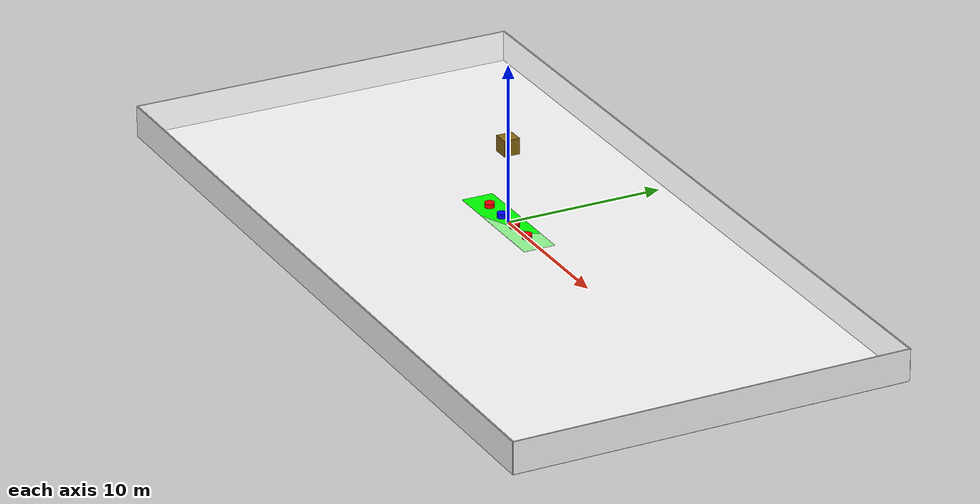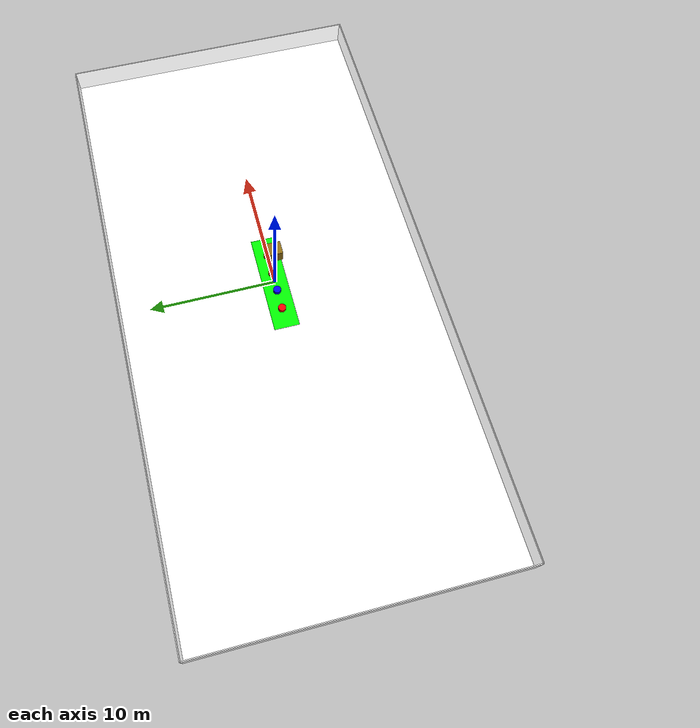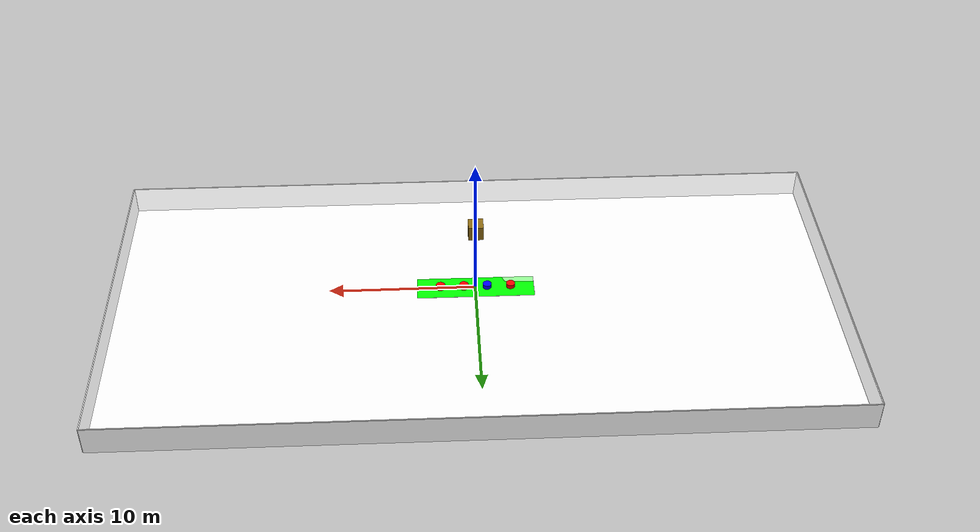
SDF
<?xml version="1.0"?>
<sdf version="1.9">
  <world name="test_sea">
    <physics name="my_physics_cfg" type="ignored">
      <max_step_size>0.0001</max_step_size>
      <real_time_factor>1.0</real_time_factor>
    </physics>

    <plugin
      filename="ignition-gazebo-physics-system"
      name="ignition::gazebo::systems::Physics">
    </plugin>
    <plugin
      filename="ignition-gazebo-user-commands-system"
      name="ignition::gazebo::systems::UserCommands">
    </plugin>
    <plugin
      filename="ignition-gazebo-scene-broadcaster-system"
      name="ignition::gazebo::systems::SceneBroadcaster">
    </plugin>
    <plugin
      filename="ignition-gazebo-buoyancy-system"
      name="ignition::gazebo::systems::Buoyancy">
      <graded_buoyancy>
        <default_density>1000</default_density>
        <density_change>
          <above_depth>0</above_depth>
          <density>1</density>
        </density_change>
      </graded_buoyancy>
    </plugin>

    <light type="directional" name="sun">
      <cast_shadows>true</cast_shadows>
      <pose>0 0 10 0 0 0</pose>
      <diffuse>0.8 0.8 0.8 1</diffuse>
      <specular>0.2 0.2 0.2 1</specular>
      <attenuation>
        <range>1000</range>
        <constant>0.9</constant>
        <linear>0.01</linear>
        <quadratic>0.001</quadratic>
      </attenuation>
      <direction>-0.5 0.1 -0.9</direction>
    </light>

    <include>
      <name>target_area</name>
      <uri>model://target_acquisition_area</uri>
      <pose>0 0 0 0 0 0</pose>
    </include>

    <include>
      <name>pool</name>
      <uri>model://swimming_pool</uri>
      <pose>0 0 0 0 0 0</pose>
    </include>

    <include>
      <name>wood_cube</name>
      <uri>model://wood_cube</uri>
      <pose>0 0 5 0 0 0</pose>
    </include>
  </world>
</sdf>

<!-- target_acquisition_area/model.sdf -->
<sdf version="1.5">
  <model name="target_acquistion_area">
    <static>true</static>
    <link name="link">

      <visual name="target_acquistion_area">
        <cast_shadows>false</cast_shadows>
        <pose>0 0 .005 0 0 0</pose>
        <geometry>
          <box>
            <size>8 2 .01</size>
          </box>
        </geometry>
        <material>
          <ambient>0.0 1.0 0.0 1.0</ambient>
          <diffuse>0.0 1.0 0.0 1.0</diffuse>
        </material>
      </visual>
    </link>

    <include>
      <name>red_drum0</name>
      <uri>model://red_drum</uri>
      <pose>-2.4 0 0 0 0 0</pose>
    </include>

    <include>
      <name>blue_drum0</name>
      <uri>model://blue_drum</uri>
      <pose>-0.8 0 0 0 0 0</pose>
    </include>

    <include>
      <name>red_drum1</name>
      <uri>model://red_drum</uri>
      <pose>0.8 0 0 0 0 0</pose>
    </include>

    <include>
      <name>red_drum2</name>
      <uri>model://red_drum</uri>
      <pose>2.4 0 0 0 0 0</pose>
    </include>

  </model>
</sdf>

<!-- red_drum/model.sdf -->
<sdf version="1.5">
  <model name="red_drum">
    <static>true</static>
    <link name="link">

      <collision name="drum">
        <pose>0 0 0.15 0 0 0</pose>
        <geometry>
          <cylinder>
            <radius>0.3</radius>
            <length>0.3</length>
          </cylinder>
        </geometry>
      </collision>

      <visual name="drum">
        <cast_shadows>false</cast_shadows>
        <pose>0 0 0.15 0 0 0</pose>
        <geometry>
          <cylinder>
            <radius>0.3</radius>
            <length>0.3</length>
          </cylinder>
        </geometry>
        <material>
          <ambient>1.0 0.0 0.0 1.0</ambient>
          <diffuse>1.0 0.0 0.0 1.0</diffuse>
        </material>
      </visual>

    </link>
  </model>
</sdf>

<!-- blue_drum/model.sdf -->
<sdf version="1.5">
  <model name="blue_drum">
    <static>true</static>
    <link name="link">

      <collision name="drum">
        <pose>0 0 0.15 0 0 0</pose>
        <geometry>
          <cylinder>
            <radius>0.3</radius>
            <length>0.3</length>
          </cylinder>
        </geometry>
      </collision>

      <visual name="drum">
        <cast_shadows>false</cast_shadows>
        <pose>0 0 0.15 0 0 0</pose>
        <geometry>
          <cylinder>
            <radius>0.3</radius>
            <length>0.3</length>
          </cylinder>
        </geometry>
        <material>
          <ambient>0.0 0.0 1.0 1.0</ambient>
          <diffuse>0.0 0.0 1.0 1.0</diffuse>
        </material>
      </visual>

    </link>
  </model>
</sdf>

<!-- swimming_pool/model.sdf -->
<sdf version="1.5">
  <model name="swimming_pool">
    <static>true</static>
    <link name="link">
      <visual name="ground">
        <cast_shadows>false</cast_shadows>
        <pose>0 0 -2 0 0 0</pose>
        <geometry>
          <box>
            <size>50 25 .1</size>
          </box>
        </geometry>
        <material>
          <ambient>1.0 1.0 1.0 1.0</ambient>
          <diffuse>1.0 1.0 1.0 1.0</diffuse>
          <pbr>
            <metal>
              <albedo_map>swimming_pool_tile.png</albedo_map>
              <roughness>0.1</roughness>
              <metalness>0.0</metalness>
            </metal>
          </pbr>
        </material>
      </visual>

      <collision name="ground">
        <pose>0 0 -2 0 0 0</pose>
        <geometry>
          <box>
            <size>50 25 .1</size>
          </box>
        </geometry>
      </collision>

      <visual name="surface">
        <cast_shadows>false</cast_shadows>
        <pose>0 0 0 0 0 0</pose>
        <geometry>
          <box>
            <size>50 25 .02</size>
          </box>
        </geometry>
        <material>
          <ambient>1.0 1.0 1.0 0.6</ambient>
          <diffuse>1.0 1.0 1.0 0.6</diffuse>
          <pbr>
            <metal>
              <albedo_map>static_water.png</albedo_map>
              <roughness>1.0</roughness>
              <metalness>0.0</metalness>
            </metal>
          </pbr>
        </material>
      </visual>

      <visual name="north">
        <cast_shadows>false</cast_shadows>
        <pose>25 0 -1 0 0 0</pose>
        <geometry>
          <box>
            <size>.1 25 2</size>
          </box>
        </geometry>
        <material>
          <ambient>1.0 1.0 1.0 1.0</ambient>
          <diffuse>1.0 1.0 1.0 1.0</diffuse>
          <pbr>
            <metal>
              <albedo_map>swimming_pool_tile.png</albedo_map>
              <roughness>0.1</roughness>
              <metalness>0.0</metalness>
            </metal>
          </pbr>
        </material>
      </visual>

      <visual name="south">
        <cast_shadows>false</cast_shadows>
        <pose>-25 0 -1 0 0 0</pose>
        <geometry>
          <box>
            <size>.1 25 2</size>
          </box>
        </geometry>
        <material>
          <ambient>1.0 1.0 1.0 1.0</ambient>
          <diffuse>1.0 1.0 1.0 1.0</diffuse>
          <pbr>
            <metal>
              <albedo_map>swimming_pool_tile.png</albedo_map>
              <roughness>0.1</roughness>
              <metalness>0.0</metalness>
            </metal>
          </pbr>
        </material>
      </visual>

      <visual name="east">
        <cast_shadows>false</cast_shadows>
        <pose>0 -12.5 -1 0 0 0</pose>
        <geometry>
          <box>
            <size>50 .1 2</size>
          </box>
        </geometry>
        <material>
          <ambient>1.0 1.0 1.0 1.0</ambient>
          <diffuse>1.0 1.0 1.0 1.0</diffuse>
          <pbr>
            <metal>
              <albedo_map>swimming_pool_tile.png</albedo_map>
              <roughness>0.1</roughness>
              <metalness>0.0</metalness>
            </metal>
          </pbr>
        </material>
      </visual>

      <visual name="west">
        <cast_shadows>false</cast_shadows>
        <pose>0 12.5 -1 0 0 0</pose>
        <geometry>
          <box>
            <size>50 .1 2</size>
          </box>
        </geometry>
        <material>
          <ambient>1.0 1.0 1.0 1.0</ambient>
          <diffuse>1.0 1.0 1.0 1.0</diffuse>
          <pbr>
            <metal>
              <albedo_map>swimming_pool_tile.png</albedo_map>
              <roughness>0.1</roughness>
              <metalness>0.0</metalness>
            </metal>
          </pbr>
        </material>
      </visual>
    </link>
  </model>
</sdf>

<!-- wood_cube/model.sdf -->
<sdf version="1.11">
  <model name="wood_block">
    <pose>0 0 0.5 0 0 0</pose>
    <link name="link">
      <inertial>
        <mass>529</mass>
        <inertia>
          <!-- inertias are tricky to compute -->
          <!-- http://gazebosim.org/tutorials?tut=inertia&cat=build_robot -->
          <ixx>44</ixx>     <!-- for a box: ixx = 0.083 * mass * (y*y + z*z) -->
          <ixy>0.0</ixy>    <!-- for a box: ixy = 0 -->
          <ixz>0.0</ixz>    <!-- for a box: ixz = 0 -->
          <iyy>44</iyy>     <!-- for a box: iyy = 0.083 * mass * (x*x + z*z) -->
          <iyz>0.0</iyz>    <!-- for a box: iyz = 0 -->
          <izz>44</izz>     <!-- for a box: izz = 0.083 * mass * (x*x + y*y) -->
        </inertia>
      </inertial>
      <collision name="collision">
        <geometry>
          <box>
            <size>1 1 1</size>
          </box>
        </geometry>
      </collision>
      <visual name="visual">
        <geometry>
          <box>
            <size>1 1 1</size>
          </box>
        </geometry>
        <material>
          <ambient>0.545 0.412 0.078 1.0</ambient>
          <diffuse>0.545 0.412 0.078 1.0</diffuse>
        </material>
      </visual>
    </link>
  </model>
</sdf>
